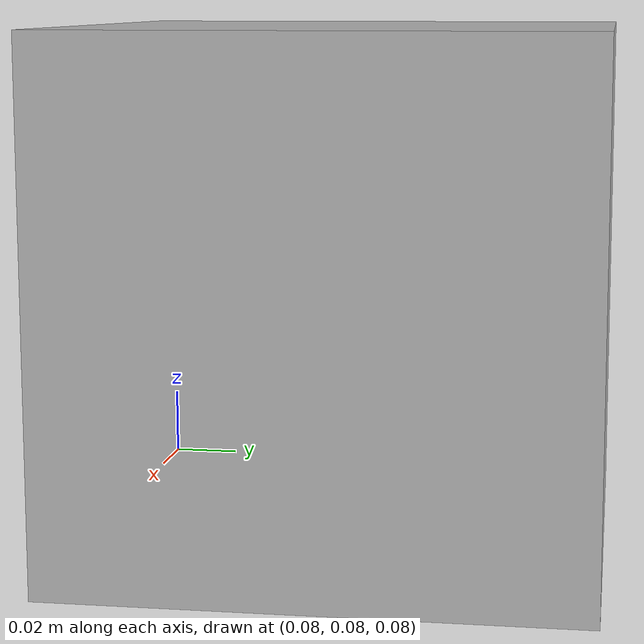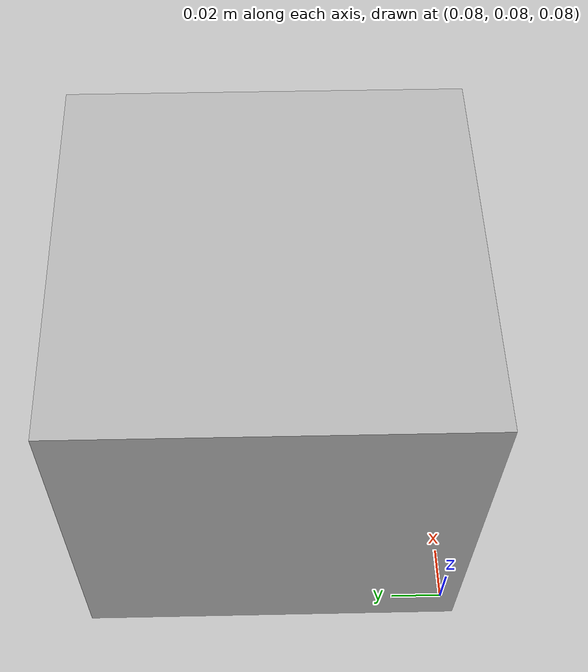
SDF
<?xml version='1.0'?>
<sdf version="1.4">
    <model name="obstacle_box_med">
        <pose>0.15 0.15 0.15 0 0 0</pose>
        <static>true</static>
        <link name="obstacle_med_link">
            <inertial>
                <mass>2.0</mass>
                <inertia>
                    <ixx>0.0075</ixx>       <!-- for a box: ixx = 0.083 * mass * (y*y + z*z) -->
                    <ixy>0.0</ixy>          <!-- for a box: ixy = 0 -->
                    <ixz>0.0</ixz>          <!-- for a box: ixz = 0 -->
                    <iyy>0.0075</iyy>       <!-- for a box: iyy = 0.083 * mass * (x*x + z*z) -->
                    <iyz>0.0</iyz>          <!-- for a box: iyz = 0 -->
                    <izz>0.0075</izz>       <!-- for a box: izz = 0.083 * mass * (x*x + y*y) -->
                </inertia>
            </inertial>
            <collision name="obstacle_med_collision">
                <geometry>
                    <box>
                        <size>0.15 0.15 0.15</size>
                    </box>
                </geometry>
            </collision>
            <visual name="obstacle_med_visual">
                <geometry>
                    <box>
                        <size>0.15 0.15 0.15</size>
                    </box>
                </geometry>
            </visual>
            <sensor name="obstacle_med_contact_sensor" type="contact">
                <contact>
                    <collision>obstacle_med_collision</collision>
                    <topic>/obstacle_med_contact</topic>
                </contact>
                <always_on>1</always_on>
                <update_rate>5</update_rate>
            </sensor>
        </link>
    </model>
</sdf>
